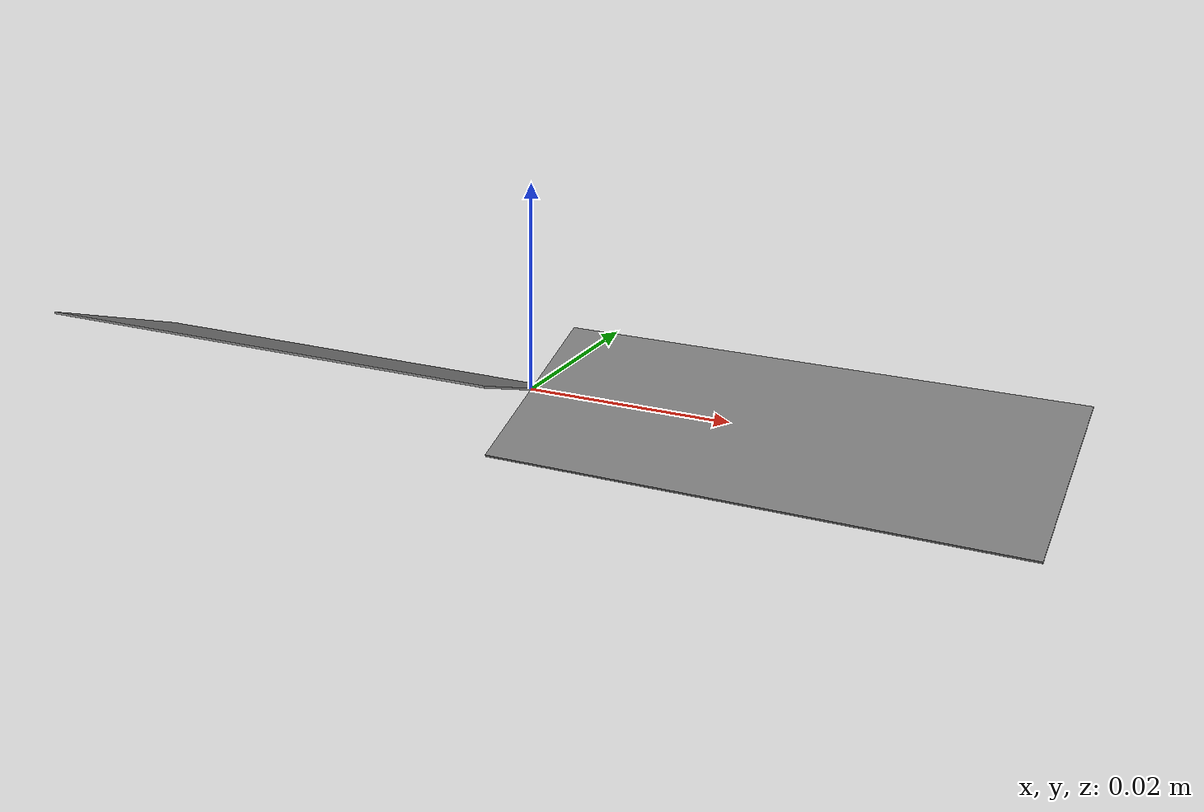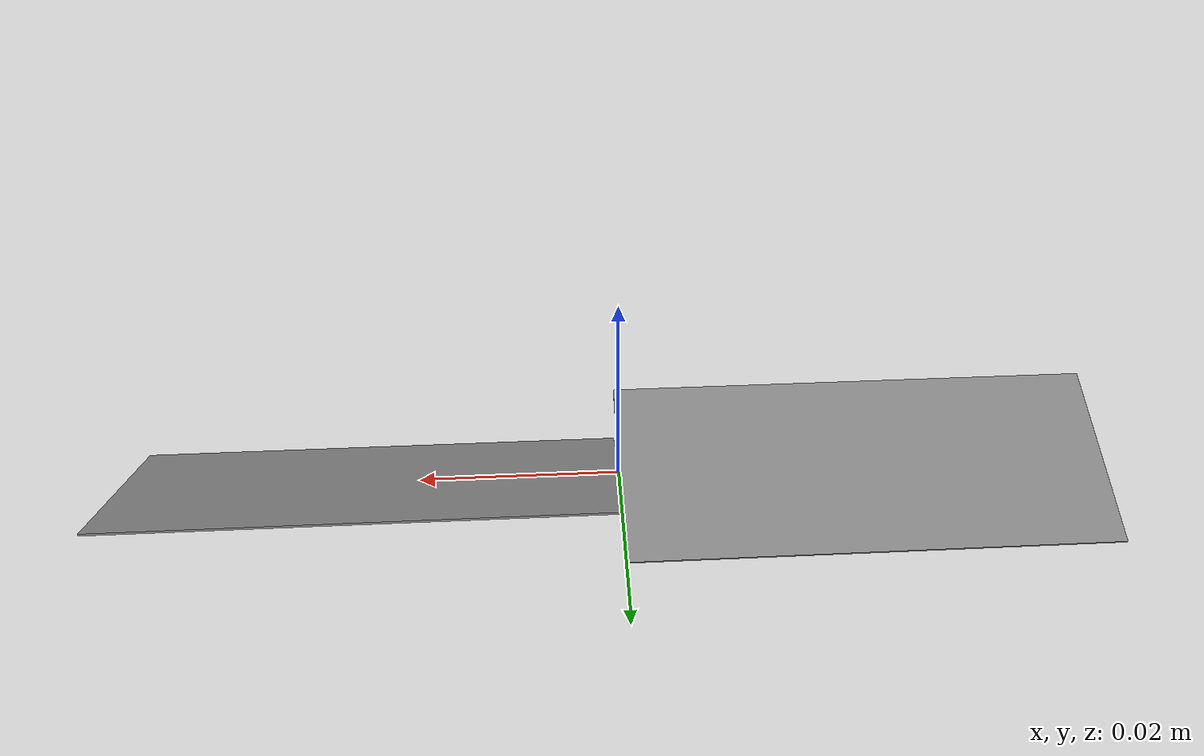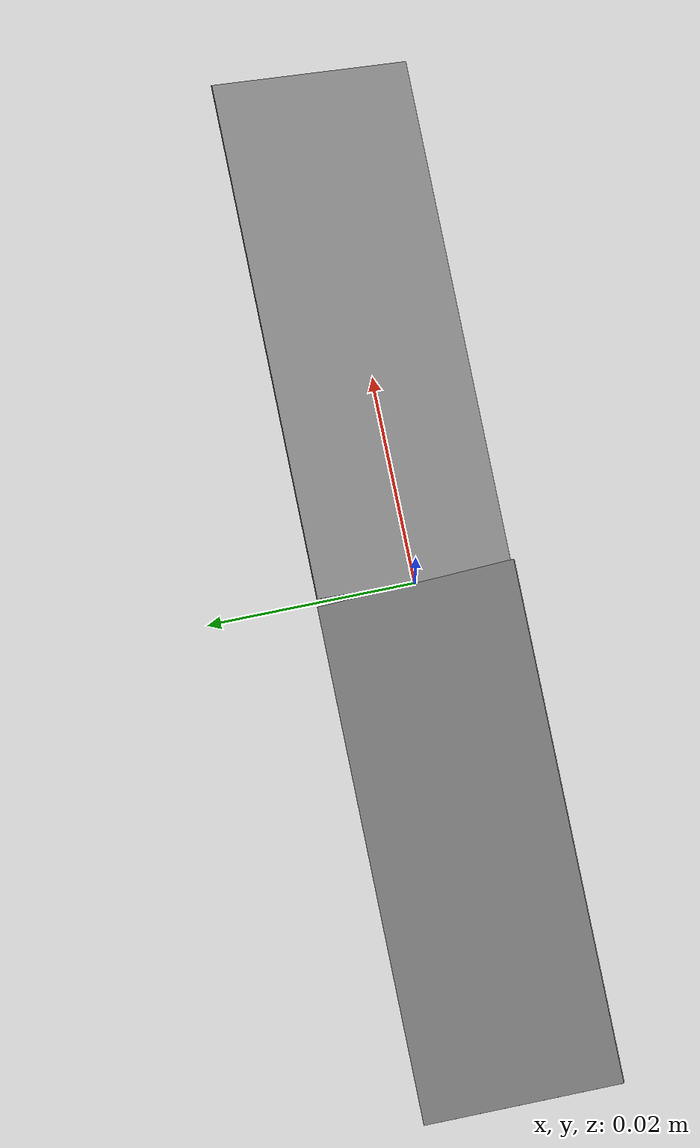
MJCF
<mujoco>
  <option density="1.225" viscosity="1.8e-5" wind="0 0 1" integrator="implicit"/>

  <worldbody>
    <light pos="0 0 1"/>
    <geom type="plane" size="1 1 .01" pos="0 0 -1"/>
    <body>
      <freejoint/>
      <body>
        <geom type="box" size=".025 .01 0.0001" pos=".025 0 0" euler="20 0 0" mass="1e-4"/>
      </body>
      <body>
        <geom type="box" size=".025 .01 0.0001" pos="-.025 0 0" euler="-19 0 0" mass="1e-4"/>
      </body>
    </body>
  </worldbody>
</mujoco>
